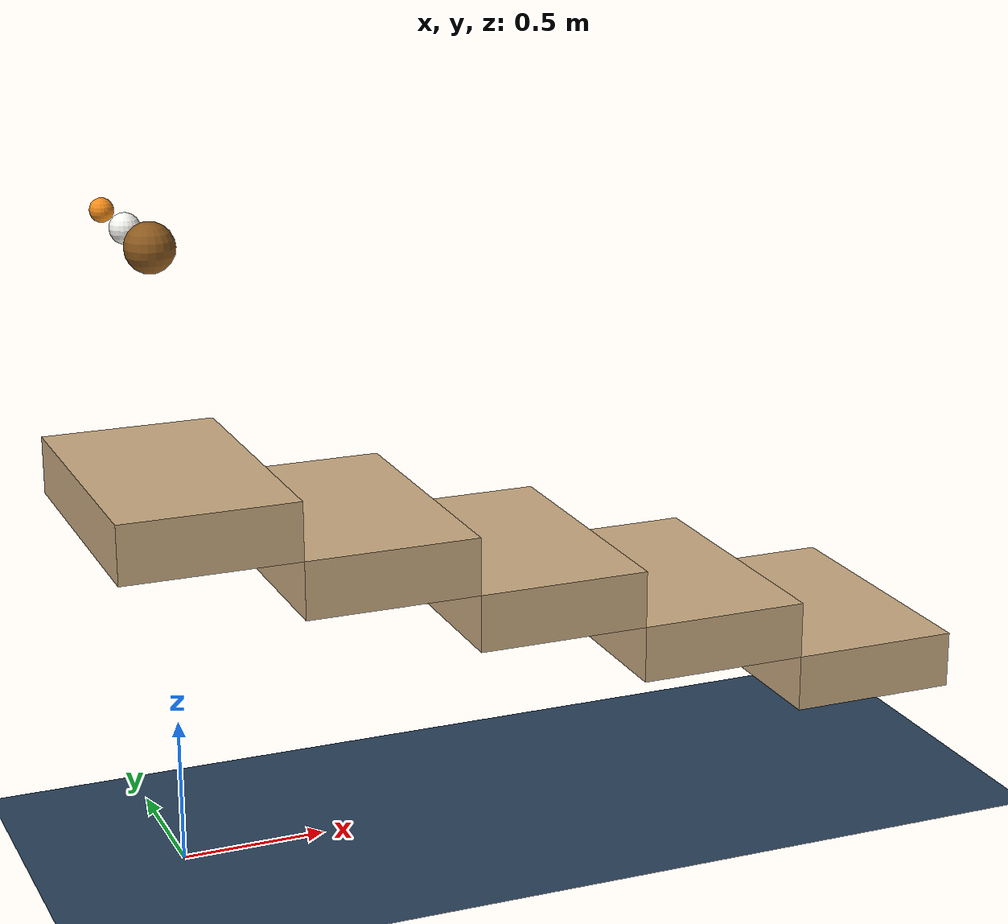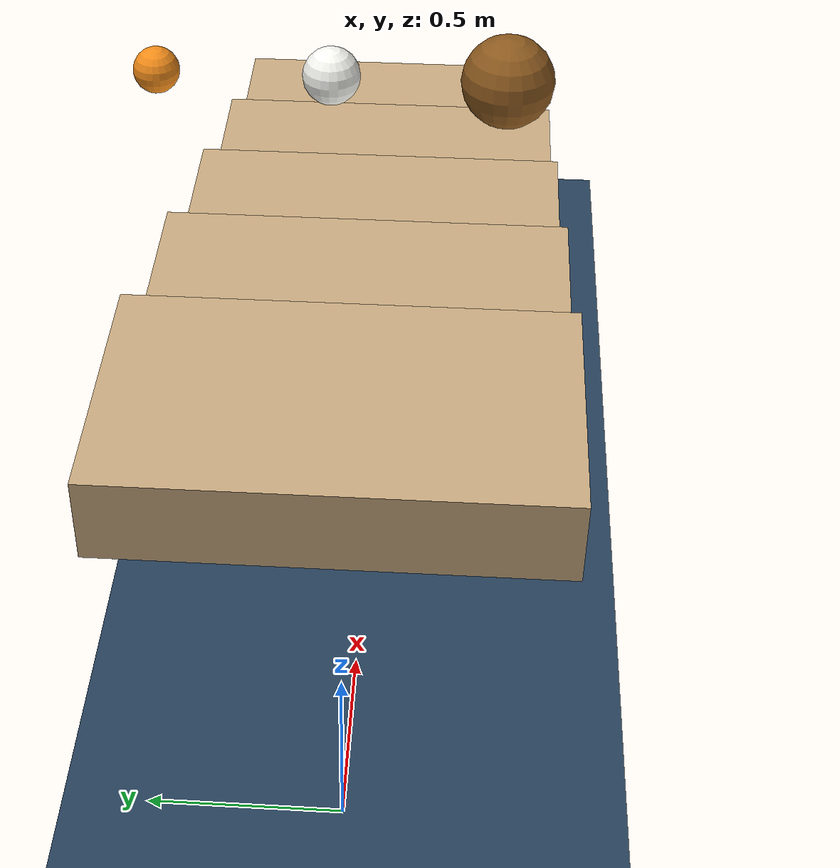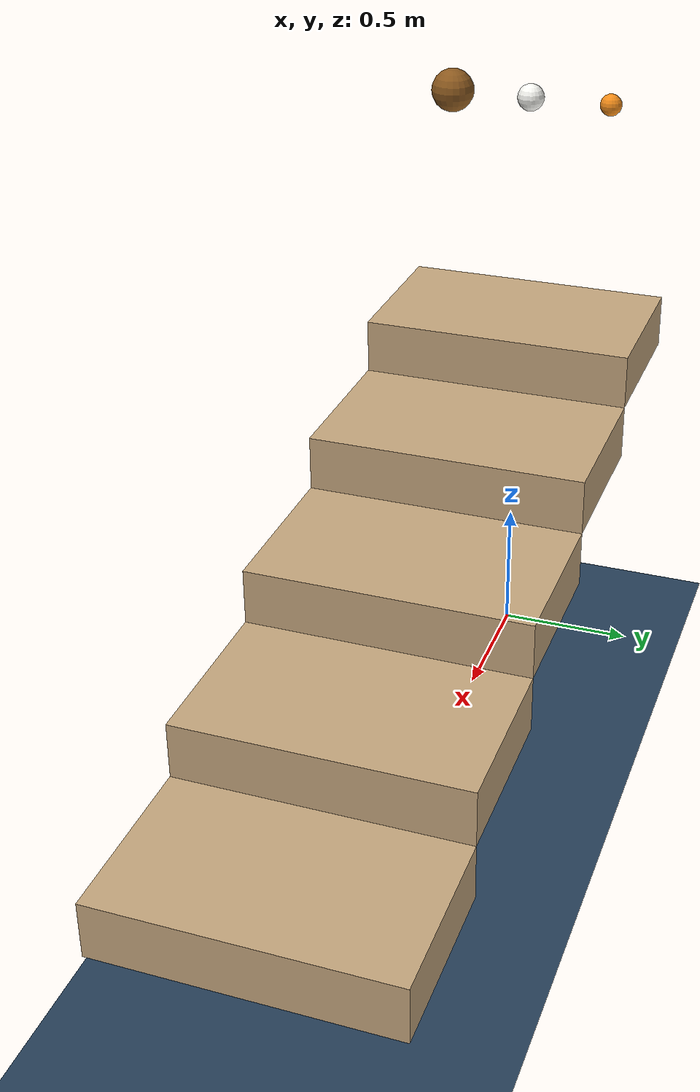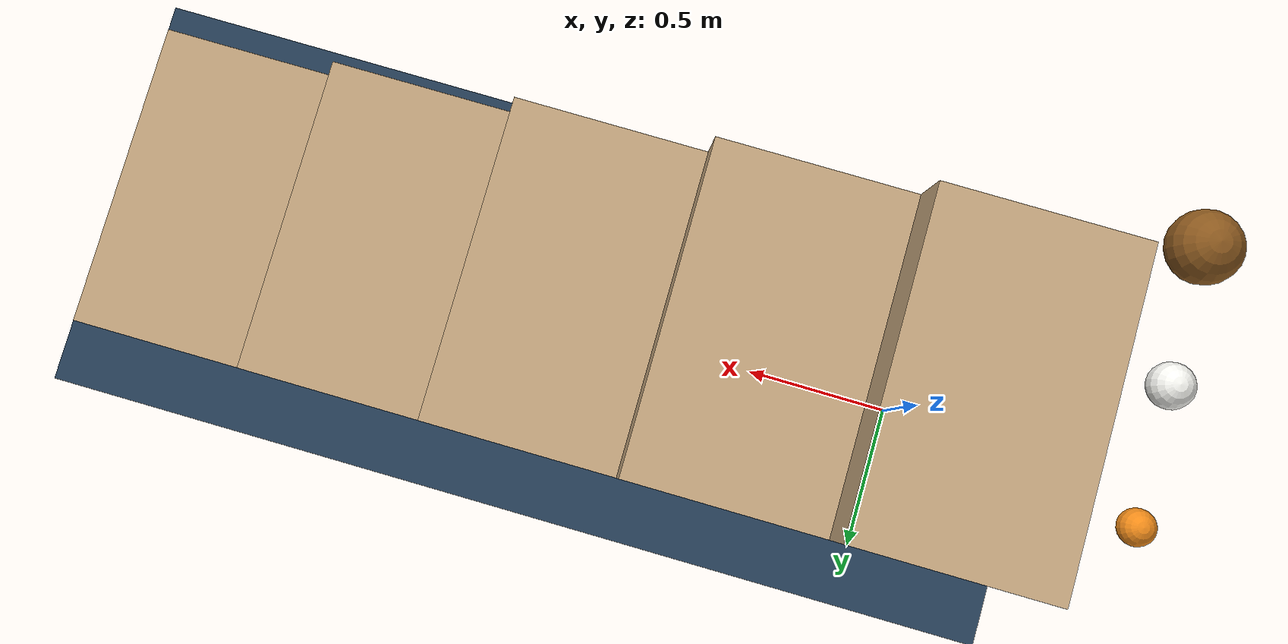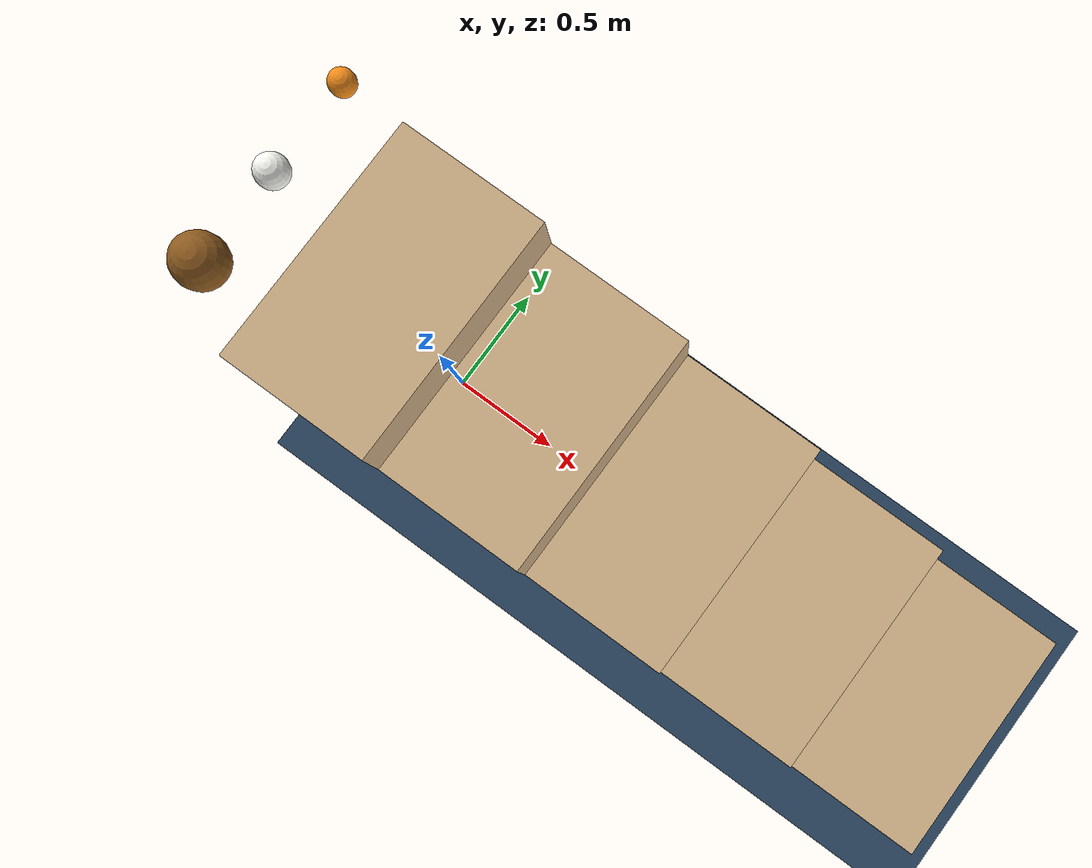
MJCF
<mujoco model="bouncing_balls_stairs">
  <option timestep="0.002" gravity="0 0 -9.81" integrator="implicitfast"/>

  <visual>
    <headlight ambient="0.45 0.45 0.45" diffuse="0.55 0.55 0.55" specular="0.2 0.2 0.2"/>
    <rgba haze="0.15 0.25 0.35 1"/>
    <global azimuth="100" elevation="-20" offwidth="1280" offheight="720"/>
  </visual>

  <asset>
    <texture type="skybox" builtin="gradient" rgb1="0.30 0.55 0.80" rgb2="0.05 0.10 0.20" width="512" height="3072"/>
    <texture type="2d" name="groundplane" builtin="checker" mark="edge"
             rgb1="0.20 0.30 0.40" rgb2="0.10 0.20 0.30" markrgb="0.85 0.85 0.85"
             width="512" height="512"/>
    <material name="ground"  texture="groundplane" texuniform="true" texrepeat="6 6" reflectance="0.15"/>
    <material name="step"    rgba="0.78 0.66 0.50 1" specular="0.1" shininess="0.1"/>
    <material name="bocce"   rgba="0.55 0.35 0.12 1" specular="0.4" shininess="0.4"/>
    <material name="golf"    rgba="0.97 0.97 0.95 1" specular="0.6" shininess="0.7"/>
    <material name="pingpong" rgba="0.95 0.55 0.10 1" specular="0.7" shininess="0.8"/>
  </asset>

  <worldbody>
    <light name="key"  pos="-1 -1 4" dir="0.3 0.3 -1" diffuse="0.85 0.85 0.85" specular="0.3 0.3 0.3"/>
    <light name="fill" pos="2 1 2.5" dir="-0.5 -0.3 -0.8" diffuse="0.4 0.4 0.45"/>

    <geom name="floor" type="plane" size="0 0 0.05" pos="0 0 0" material="ground"/>

    <!-- 5-step staircase. Half-sizes 0.30 (x) x 0.50 (y) x 0.10 (z) — the
         y-depth is wider than the single-ball variant so 3 balls can
         drop along y without sliding off the tread edge. -->
    <geom name="step1" type="box" pos="0.00 0  1.30" size="0.30 0.50 0.10" material="step"/>
    <geom name="step2" type="box" pos="0.60 0  1.10" size="0.30 0.50 0.10" material="step"/>
    <geom name="step3" type="box" pos="1.20 0  0.90" size="0.30 0.50 0.10" material="step"/>
    <geom name="step4" type="box" pos="1.80 0  0.70" size="0.30 0.50 0.10" material="step"/>
    <geom name="step5" type="box" pos="2.40 0  0.50" size="0.30 0.50 0.10" material="step"/>

    <!-- Bocce: heavy, near-overdamped contact -> rolls, barely bounces. -->
    <body name="bocce" pos="-0.10 -0.30 2.20">
      <freejoint name="bocce_free"/>
      <geom name="bocce_geom" type="sphere" size="0.08" material="bocce"
            mass="0.92"
            condim="3"
            friction="0.45 0.005 0.0001"
            solref="0.01 0.95"
            solimp="0.95 0.99 0.001"/>
    </body>

    <!-- Golf: medium-light, moderately bouncy -> several lively bounces. -->
    <body name="golf" pos="-0.10 0.00 2.20">
      <freejoint name="golf_free"/>
      <geom name="golf_geom" type="sphere" size="0.05" material="golf"
            mass="0.046"
            condim="3"
            friction="0.10 0.002 0.0001"
            solref="-50000 -20"
            solimp="0.95 0.99 0.001"/>
    </body>

    <!-- Ping pong: very light, near-elastic -> many small bounces.
         Low friction[0] keeps the ball from biting hard on each tread. -->
    <body name="pingpong" pos="-0.10 0.30 2.20">
      <freejoint name="pingpong_free"/>
      <geom name="pingpong_geom" type="sphere" size="0.04" material="pingpong"
            mass="0.005"
            condim="3"
            friction="0.05 0.0005 0.0001"
            solref="0.001 0.06"
            solimp="0.95 0.99 0.001"/>
    </body>
  </worldbody>

  <keyframe>
    <key name="release"
      qpos="-0.10 -0.30 2.20  1 0 0 0
            -0.10  0.00 2.20  1 0 0 0
            -0.10  0.30 2.20  1 0 0 0"
      qvel="1.20 0 0  0 0 0
            1.20 0 0  0 0 0
            1.20 0 0  0 0 0"/>
  </keyframe>
</mujoco>
